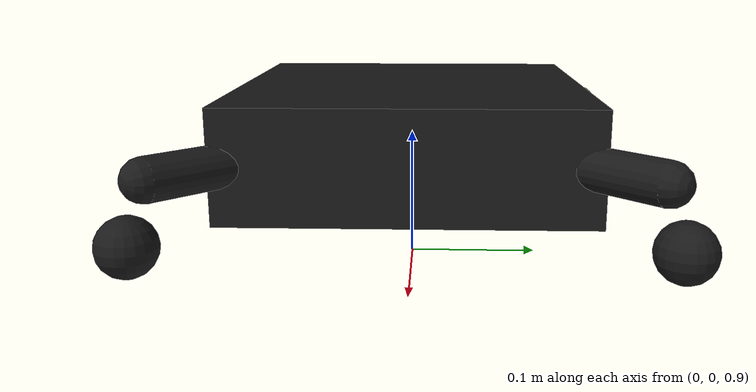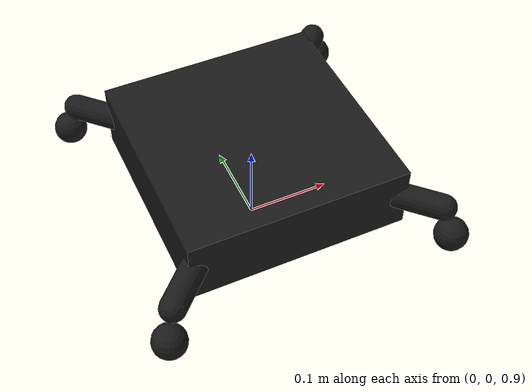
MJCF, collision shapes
<mujoco model="bebop">
  <compiler angle="radian" inertiafromgeom="false"/>
  <option timestep="0.005" gravity="0 0 -9.81"/>

  <visual>
    <global azimuth="120" elevation="-20"/>
    <headlight ambient="0.4 0.4 0.4" diffuse="0.8 0.8 0.8" specular="0.1 0.1 0.1"/>
  </visual>

  <default>
    <default class="visual">
      <geom group="1" type="mesh" contype="0" conaffinity="0"/>
    </default>
    <default class="collision">
      <geom group="3" rgba="0.1 0.1 0.1 1"/>
    </default>
  </default>

  <asset>
    <texture type="skybox" builtin="gradient" rgb1="0.3 0.5 0.7" rgb2="0 0 0" width="512" height="3072"/>
    <texture name="groundplane" type="2d" builtin="checker" rgb1="0.2 0.3 0.4" rgb2="0.1 0.2 0.3" width="300" height="300"/>
    <material name="ground" texture="groundplane" texrepeat="5 5" reflectance="0.2"/>

    <material name="14_-_Default_0" specular="0.0" shininess="0.0" rgba="0.000000 0.000000 0.000000 1.000000"/>
    <material name="Mat_0" specular="0.0" shininess="0.0" rgba="0.920270 0.920270 0.920270 1.000000"/>
    <material name="Material.002_0" specular="0.0" shininess="0.0" rgba="0.069803 0.069803 0.069803 1.000000"/>

    <mesh name="bebop_mesh_0" file="bebop_0.obj"/>
    <mesh name="bebop_mesh_1" file="bebop_1.obj"/>
    <mesh name="bebop_mesh_2" file="bebop_2.obj"/>
  </asset>

  <worldbody>
    <light name="main_light" diffuse=".5 .5 .5" pos="0 0 5" dir="0 0 -1" directional="true"/>
    <geom name="floor" size="5 5 0.1" type="plane" material="ground"/>

    <body name="bebop" pos="0 0 1">
      <freejoint name="root"/>

      <inertial pos="0 0 0" mass="0.42" diaginertia="0.0025 0.0025 0.004"/>

      <site name="actuation_center" pos="0 0 0" size="0.01"/>

      <geom name="mesh0" mesh="bebop_mesh_0" material="Mat_0" class="visual"/>
      <geom name="mesh1" mesh="bebop_mesh_1" material="Material.002_0" class="visual"/>
      <geom name="mesh2" mesh="bebop_mesh_2" material="14_-_Default_0" class="visual"/>

      <geom name="body_col" type="box" size="0.13 0.13 0.04" pos="0 0 0" class="collision"/>

      <geom name="FR_stem_col" type="capsule" fromto="0.0 0.0 0  0.16 0.16 0" size="0.015" class="collision"/>
      <geom name="FL_stem_col" type="capsule" fromto="0.0 0.0 0 -0.16 0.16 0" size="0.015" class="collision"/>
      <geom name="RR_stem_col" type="capsule" fromto="0.0 0.0 0  0.16 -0.16 0" size="0.015" class="collision"/>
      <geom name="RL_steam_col" type="capsule" fromto="0.0 0.0 0 -0.16 -0.16 0" size="0.015" class="collision"/>

      <geom name="FR_pad_col" type="sphere" size="0.02" pos="0.17 0.17 -0.04" class="collision"/>
      <geom name="FL_pad_col" type="sphere" size="0.02" pos="-0.17 0.17 -0.04" class="collision"/>
      <geom name="RR_pad_col" type="sphere" size="0.02" pos="0.17 -0.17 -0.04" class="collision"/>
      <geom name="RL_pad_col" type="sphere" size="0.02" pos="-0.17 -0.17 -0.04" class="collision"/>
    </body>
  </worldbody>

  <actuator>
    <motor name="body_thrust" site="actuation_center" gear="0 0 9.156 0 0 0" ctrlrange="0 1"/>

    <motor name="x_moment" site="actuation_center" gear="0 0 0 0.0375 0 0" ctrlrange="-0.0001 0.0001"/>

    <motor name="y_moment" site="actuation_center" gear="0 0 0 0 0.0375 0" ctrlrange="-0.0001 0.0001"/>

    <motor name="z_moment" site="actuation_center" gear="0 0 0 0 0 0.0200" ctrlrange="-0.0001 0.0001"/>
  </actuator>

</mujoco>
